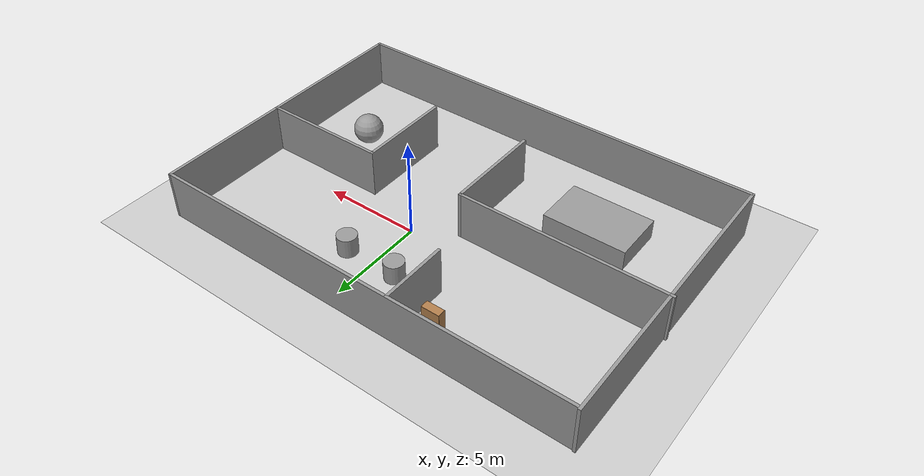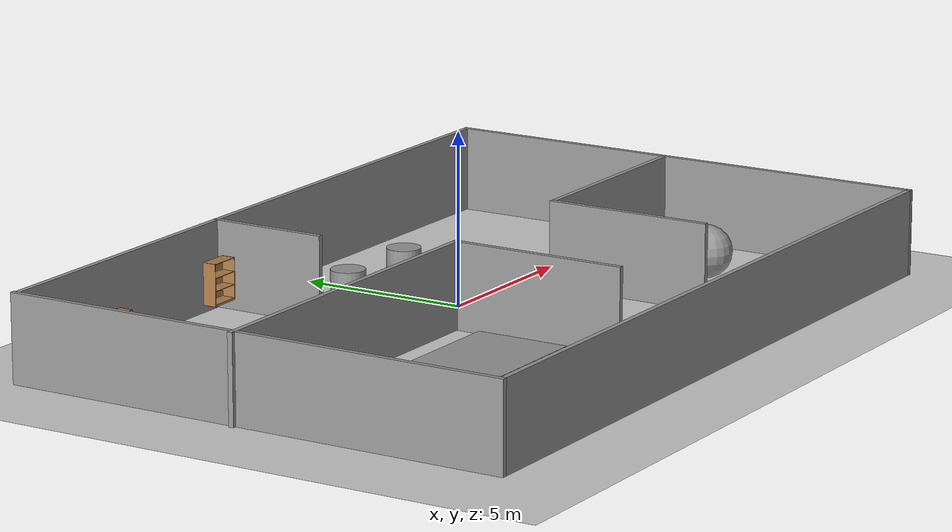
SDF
<sdf version="1.7">
 <world name="default">
  <light name="sun" type="directional">
   <pose>0 0 10 0 -0 0</pose>
   <diffuse>0.8 0.8 0.8 1</diffuse>
   <specular>0.2 0.2 0.2 1</specular>
   <attenuation>
    <range>1000</range>
    <constant>0.9</constant>
    <linear>0.01</linear>
    <quadratic>0.001</quadratic>
   </attenuation>
   <direction>-0.5 0.1 -0.9</direction>
   <spot><inner_angle>0</inner_angle><outer_angle>0</outer_angle><falloff>0</falloff></spot>
  </light>
  <model name="ground_plane">
   <static>1</static>
   <link name="link">
    <collision name="collision">
     <geometry><plane><normal>0 0 1</normal><size>100 100</size></plane></geometry>
     <surface><friction><ode><mu>100</mu><mu2>50</mu2></ode></friction></surface>
    </collision>
    <visual name="visual">
     <cast_shadows>0</cast_shadows>
     <geometry><plane><normal>0 0 1</normal><size>100 100</size></plane></geometry>
     <material>
      <script><uri>file://media/materials/scripts/gazebo.material</uri><name>Gazebo/Grey</name></script>
     </material>
    </visual>
   </link>
  </model>
  <gravity>0 0 -9.8</gravity>
  <magnetic_field>6e-06 2.3e-05 -4.2e-05</magnetic_field>
  <atmosphere type="adiabatic"/>
  <physics type="ode">
   <max_step_size>0.001</max_step_size>
   <real_time_factor>1</real_time_factor>
   <real_time_update_rate>1000</real_time_update_rate>
  </physics>
  <scene><ambient>0.4 0.4 0.4 1</ambient><background>0.7 0.7 0.7 1</background><shadows>1</shadows></scene>
  <audio><device>default</device></audio>
  <spherical_coordinates>
   <surface_model>EARTH_WGS84</surface_model>
   <latitude_deg>0</latitude_deg>
   <longitude_deg>0</longitude_deg>
   <elevation>0</elevation>
   <heading_deg>0</heading_deg>
  </spherical_coordinates>
  <model name="unit_cylinder">
   <pose>-1.32629 2.79554 0.499997 4e-06 3e-06 -0.00901</pose>
   <link name="link">
    <inertial>
     <mass>1</mass>
     <inertia><ixx>0.145833</ixx><ixy>0</ixy><ixz>0</ixz><iyy>0.145833</iyy><iyz>0</iyz><izz>0.125</izz></inertia>
    </inertial>
    <collision name="collision">
     <geometry><cylinder><radius>0.5</radius><length>1</length></cylinder></geometry>
    </collision>
    <visual name="visual">
     <geometry><cylinder><radius>0.5</radius><length>1</length></cylinder></geometry>
     <material>
      <script><name>Gazebo/Grey</name><uri>file://media/materials/scripts/gazebo.material</uri></script>
     </material>
    </visual>
   </link>
  </model>
  <model name="unit_sphere">
   <pose>6.37742 -4.31755 0.768866 0 -0 0</pose>
   <link name="link">
    <inertial>
     <mass>1</mass>
     <inertia><ixx>0.1</ixx><ixy>0</ixy><ixz>0</ixz><iyy>0.1</iyy><iyz>0</iyz><izz>0.1</izz></inertia>
    </inertial>
    <collision name="collision"><geometry><sphere><radius>0.768865</radius></sphere></geometry></collision>
    <visual name="visual">
     <geometry><sphere><radius>0.768865</radius></sphere></geometry>
     <material>
      <script><name>Gazebo/Grey</name><uri>file://media/materials/scripts/gazebo.material</uri></script>
     </material>
    </visual>
   </link>
  </model>
  <model name="unit_cylinder_0">
   <pose>1.4747 2.75806 0.499993 -3e-06 3e-06 1.1e-05</pose>
   <link name="link">
    <inertial>
     <mass>1</mass>
     <inertia><ixx>0.145833</ixx><ixy>0</ixy><ixz>0</ixz><iyy>0.145833</iyy><iyz>0</iyz><izz>0.125</izz></inertia>
    </inertial>
    <collision name="collision">
     <geometry><cylinder><radius>0.5</radius><length>1</length></cylinder></geometry>
    </collision>
    <visual name="visual">
     <geometry><cylinder><radius>0.5</radius><length>1</length></cylinder></geometry>
     <material>
      <script><name>Gazebo/Grey</name><uri>file://media/materials/scripts/gazebo.material</uri></script>
     </material>
    </visual>
   </link>
  </model>
  <model name="bookshelf">
   <static>1</static>
   <link name="link">
    <inertial><mass>1</mass></inertial>
    <collision name="back">
     <pose>0 0.005 0.6 0 -0 0</pose>
     <geometry><box><size>0.9 0.01 1.2</size></box></geometry>
    </collision>
    <visual name="visual1">
     <pose>0 0.005 0.6 0 -0 0</pose>
     <geometry><box><size>0.9 0.01 1.2</size></box></geometry>
     <material>
      <script><uri>file://media/materials/scripts/gazebo.material</uri><name>Gazebo/Wood</name></script>
     </material>
    </visual>
    <collision name="left_side">
     <pose>0.45 -0.195 0.6 0 -0 0</pose>
     <geometry><box><size>0.02 0.4 1.2</size></box></geometry>
    </collision>
    <visual name="visual2">
     <pose>0.45 -0.195 0.6 0 -0 0</pose>
     <geometry><box><size>0.02 0.4 1.2</size></box></geometry>
     <material>
      <script><uri>file://media/materials/scripts/gazebo.material</uri><name>Gazebo/Wood</name></script>
     </material>
    </visual>
    <collision name="right_side">
     <pose>-0.45 -0.195 0.6 0 -0 0</pose>
     <geometry><box><size>0.02 0.4 1.2</size></box></geometry>
    </collision>
    <visual name="visual3">
     <pose>-0.45 -0.195 0.6 0 -0 0</pose>
     <geometry><box><size>0.02 0.4 1.2</size></box></geometry>
     <material>
      <script><uri>file://media/materials/scripts/gazebo.material</uri><name>Gazebo/Wood</name></script>
     </material>
    </visual>
    <collision name="bottom">
     <pose>0 -0.195 0.03 0 -0 0</pose>
     <geometry><box><size>0.88 0.4 0.06</size></box></geometry>
    </collision>
    <visual name="visual4">
     <pose>0 -0.195 0.03 0 -0 0</pose>
     <geometry><box><size>0.88 0.4 0.06</size></box></geometry>
     <material>
      <script><uri>file://media/materials/scripts/gazebo.material</uri><name>Gazebo/Wood</name></script>
     </material>
    </visual>
    <collision name="top">
     <pose>0 -0.195 1.19 0 -0 0</pose>
     <geometry><box><size>0.88 0.4 0.02</size></box></geometry>
    </collision>
    <visual name="visual5">
     <pose>0 -0.195 1.19 0 -0 0</pose>
     <geometry><box><size>0.88 0.4 0.02</size></box></geometry>
     <material>
      <script><uri>file://media/materials/scripts/gazebo.material</uri><name>Gazebo/Wood</name></script>
     </material>
    </visual>
    <collision name="low_shelf">
     <pose>0 -0.195 0.43 0 -0 0</pose>
     <geometry><box><size>0.88 0.4 0.02</size></box></geometry>
    </collision>
    <visual name="visual6">
     <pose>0 -0.195 0.43 0 -0 0</pose>
     <geometry><box><size>0.88 0.4 0.02</size></box></geometry>
     <material>
      <script><uri>file://media/materials/scripts/gazebo.material</uri><name>Gazebo/Wood</name></script>
     </material>
    </visual>
    <collision name="high_shelf">
     <pose>0 -0.195 0.8 0 -0 0</pose>
     <geometry><box><size>0.88 0.4 0.02</size></box></geometry>
    </collision>
    <visual name="visual7">
     <pose>0 -0.195 0.8 0 -0 0</pose>
     <geometry><box><size>0.88 0.4 0.02</size></box></geometry>
     <material>
      <script><uri>file://media/materials/scripts/gazebo.material</uri><name>Gazebo/Wood</name></script>
     </material>
    </visual>
   </link>
   <pose>-4.95594 4.8047 0.619736 0 -0 0</pose>
  </model>
  <model name="bookshelf_0">
   <static>1</static>
   <link name="link">
    <inertial><mass>1</mass></inertial>
    <collision name="back">
     <pose>0 0.005 0.6 0 -0 0</pose>
     <geometry><box><size>0.9 0.01 1.2</size></box></geometry>
    </collision>
    <visual name="visual1">
     <pose>0 0.005 0.6 0 -0 0</pose>
     <geometry><box><size>0.9 0.01 1.2</size></box></geometry>
     <material>
      <script><uri>file://media/materials/scripts/gazebo.material</uri><name>Gazebo/Wood</name></script>
     </material>
    </visual>
    <collision name="left_side">
     <pose>0.45 -0.195 0.6 0 -0 0</pose>
     <geometry><box><size>0.02 0.4 1.2</size></box></geometry>
    </collision>
    <visual name="visual2">
     <pose>0.45 -0.195 0.6 0 -0 0</pose>
     <geometry><box><size>0.02 0.4 1.2</size></box></geometry>
     <material>
      <script><uri>file://media/materials/scripts/gazebo.material</uri><name>Gazebo/Wood</name></script>
     </material>
    </visual>
    <collision name="right_side">
     <pose>-0.45 -0.195 0.6 0 -0 0</pose>
     <geometry><box><size>0.02 0.4 1.2</size></box></geometry>
    </collision>
    <visual name="visual3">
     <pose>-0.45 -0.195 0.6 0 -0 0</pose>
     <geometry><box><size>0.02 0.4 1.2</size></box></geometry>
     <material>
      <script><uri>file://media/materials/scripts/gazebo.material</uri><name>Gazebo/Wood</name></script>
     </material>
    </visual>
    <collision name="bottom">
     <pose>0 -0.195 0.03 0 -0 0</pose>
     <geometry><box><size>0.88 0.4 0.06</size></box></geometry>
    </collision>
    <visual name="visual4">
     <pose>0 -0.195 0.03 0 -0 0</pose>
     <geometry><box><size>0.88 0.4 0.06</size></box></geometry>
     <material>
      <script><uri>file://media/materials/scripts/gazebo.material</uri><name>Gazebo/Wood</name></script>
     </material>
    </visual>
    <collision name="top">
     <pose>0 -0.195 1.19 0 -0 0</pose>
     <geometry><box><size>0.88 0.4 0.02</size></box></geometry>
    </collision>
    <visual name="visual5">
     <pose>0 -0.195 1.19 0 -0 0</pose>
     <geometry><box><size>0.88 0.4 0.02</size></box></geometry>
     <material>
      <script><uri>file://media/materials/scripts/gazebo.material</uri><name>Gazebo/Wood</name></script>
     </material>
    </visual>
    <collision name="low_shelf">
     <pose>0 -0.195 0.43 0 -0 0</pose>
     <geometry><box><size>0.88 0.4 0.02</size></box></geometry>
    </collision>
    <visual name="visual6">
     <pose>0 -0.195 0.43 0 -0 0</pose>
     <geometry><box><size>0.88 0.4 0.02</size></box></geometry>
     <material>
      <script><uri>file://media/materials/scripts/gazebo.material</uri><name>Gazebo/Wood</name></script>
     </material>
    </visual>
    <collision name="high_shelf">
     <pose>0 -0.195 0.8 0 -0 0</pose>
     <geometry><box><size>0.88 0.4 0.02</size></box></geometry>
    </collision>
    <visual name="visual7">
     <pose>0 -0.195 0.8 0 -0 0</pose>
     <geometry><box><size>0.88 0.4 0.02</size></box></geometry>
     <material>
      <script><uri>file://media/materials/scripts/gazebo.material</uri><name>Gazebo/Wood</name></script>
     </material>
    </visual>
   </link>
   <pose>-8.94225 5.3478 0 0 -0 0</pose>
  </model>
  <model name="bookshelf_4">
   <static>1</static>
   <link name="link">
    <inertial><mass>1</mass></inertial>
    <collision name="back">
     <pose>0 0.005 0.6 0 -0 0</pose>
     <geometry><box><size>0.9 0.01 1.2</size></box></geometry>
    </collision>
    <visual name="visual1">
     <pose>0 0.005 0.6 0 -0 0</pose>
     <geometry><box><size>0.9 0.01 1.2</size></box></geometry>
     <material>
      <script><uri>file://media/materials/scripts/gazebo.material</uri><name>Gazebo/Wood</name></script>
     </material>
    </visual>
    <collision name="left_side">
     <pose>0.45 -0.195 0.6 0 -0 0</pose>
     <geometry><box><size>0.02 0.4 1.2</size></box></geometry>
    </collision>
    <visual name="visual2">
     <pose>0.45 -0.195 0.6 0 -0 0</pose>
     <geometry><box><size>0.02 0.4 1.2</size></box></geometry>
     <material>
      <script><uri>file://media/materials/scripts/gazebo.material</uri><name>Gazebo/Wood</name></script>
     </material>
    </visual>
    <collision name="right_side">
     <pose>-0.45 -0.195 0.6 0 -0 0</pose>
     <geometry><box><size>0.02 0.4 1.2</size></box></geometry>
    </collision>
    <visual name="visual3">
     <pose>-0.45 -0.195 0.6 0 -0 0</pose>
     <geometry><box><size>0.02 0.4 1.2</size></box></geometry>
     <material>
      <script><uri>file://media/materials/scripts/gazebo.material</uri><name>Gazebo/Wood</name></script>
     </material>
    </visual>
    <collision name="bottom">
     <pose>0 -0.195 0.03 0 -0 0</pose>
     <geometry><box><size>0.88 0.4 0.06</size></box></geometry>
    </collision>
    <visual name="visual4">
     <pose>0 -0.195 0.03 0 -0 0</pose>
     <geometry><box><size>0.88 0.4 0.06</size></box></geometry>
     <material>
      <script><uri>file://media/materials/scripts/gazebo.material</uri><name>Gazebo/Wood</name></script>
     </material>
    </visual>
    <collision name="top">
     <pose>0 -0.195 1.19 0 -0 0</pose>
     <geometry><box><size>0.88 0.4 0.02</size></box></geometry>
    </collision>
    <visual name="visual5">
     <pose>0 -0.195 1.19 0 -0 0</pose>
     <geometry><box><size>0.88 0.4 0.02</size></box></geometry>
     <material>
      <script><uri>file://media/materials/scripts/gazebo.material</uri><name>Gazebo/Wood</name></script>
     </material>
    </visual>
    <collision name="low_shelf">
     <pose>0 -0.195 0.43 0 -0 0</pose>
     <geometry><box><size>0.88 0.4 0.02</size></box></geometry>
    </collision>
    <visual name="visual6">
     <pose>0 -0.195 0.43 0 -0 0</pose>
     <geometry><box><size>0.88 0.4 0.02</size></box></geometry>
     <material>
      <script><uri>file://media/materials/scripts/gazebo.material</uri><name>Gazebo/Wood</name></script>
     </material>
    </visual>
    <collision name="high_shelf">
     <pose>0 -0.195 0.8 0 -0 0</pose>
     <geometry><box><size>0.88 0.4 0.02</size></box></geometry>
    </collision>
    <visual name="visual7">
     <pose>0 -0.195 0.8 0 -0 0</pose>
     <geometry><box><size>0.88 0.4 0.02</size></box></geometry>
     <material>
      <script><uri>file://media/materials/scripts/gazebo.material</uri><name>Gazebo/Wood</name></script>
     </material>
    </visual>
   </link>
   <pose>4.38075 -1.46509 0 0 -0 0</pose>
  </model>
  <model name="unit_box">
   <pose>-7.01083 -5.05125 0.517375 7e-05 -0 2e-06</pose>
   <link name="link">
    <inertial>
     <mass>1</mass>
     <inertia>
      <ixx>0.166667</ixx>
      <ixy>0</ixy>
      <ixz>0</ixz>
      <iyy>0.166667</iyy>
      <iyz>0</iyz>
      <izz>0.166667</izz>
     </inertia>
    </inertial>
    <collision name="collision"><geometry><box><size>4.27765 2.70469 1.03494</size></box></geometry></collision>
    <visual name="visual">
     <geometry><box><size>4.27765 2.70469 1.03494</size></box></geometry>
     <material>
      <script><name>Gazebo/Grey</name><uri>file://media/materials/scripts/gazebo.material</uri></script>
     </material>
    </visual>
   </link>
  </model>
  <model name="room2">
   <pose>-1.47088 -1.65721 0 0 -0 0</pose>
   <link name="Wall_10">
    <collision name="Wall_10_Collision">
     <geometry><box><size>5.25 0.15 2.5</size></box></geometry>
     <pose>0 0 1.25 0 -0 0</pose>
    </collision>
    <visual name="Wall_10_Visual">
     <pose>0 0 1.25 0 -0 0</pose>
     <geometry><box><size>5.25 0.15 2.5</size></box></geometry>
     <material>
      <script><uri>file://media/materials/scripts/gazebo.material</uri><name>Gazebo/Grey</name></script>
      <ambient>1 1 1 1</ambient>
     </material>
     <meta><layer>0</layer></meta>
    </visual>
    <pose>-0.505851 -2.06642 0 0 -0 -1.5708</pose>
   </link>
   <link name="Wall_13">
    <collision name="Wall_13_Collision">
     <geometry><box><size>5 0.15 2.5</size></box></geometry>
     <pose>0 0 1.25 0 -0 0</pose>
    </collision>
    <visual name="Wall_13_Visual">
     <pose>0 0 1.25 0 -0 0</pose>
     <geometry><box><size>5 0.15 2.5</size></box></geometry>
     <material>
      <script><uri>file://media/materials/scripts/gazebo.material</uri><name>Gazebo/Grey</name></script>
      <ambient>1 1 1 1</ambient>
     </material>
     <meta><layer>0</layer></meta>
    </visual>
    <pose>4.70681 -1.8906 0 0 -0 1.5708</pose>
   </link>
   <link name="Wall_14">
    <collision name="Wall_14_Collision">
     <geometry><box><size>6.5 0.15 2.5</size></box></geometry>
     <pose>0 0 1.25 0 -0 0</pose>
    </collision>
    <visual name="Wall_14_Visual">
     <pose>0 0 1.25 0 -0 0</pose>
     <geometry><box><size>6.5 0.15 2.5</size></box></geometry>
     <material>
      <script><uri>file://media/materials/scripts/gazebo.material</uri><name>Gazebo/Grey</name></script>
      <ambient>1 1 1 1</ambient>
     </material>
     <meta><layer>0</layer></meta>
    </visual>
    <pose>7.88181 0.534404 0 0 -0 0</pose>
   </link>
   <link name="Wall_17">
    <collision name="Wall_17_Collision">
     <geometry><box><size>3.5 0.15 2.5</size></box></geometry>
     <pose>0 0 1.25 0 -0 0</pose>
    </collision>
    <visual name="Wall_17_Visual">
     <pose>0 0 1.25 0 -0 0</pose>
     <geometry><box><size>3.5 0.15 2.5</size></box></geometry>
     <material>
      <script><uri>file://media/materials/scripts/gazebo.material</uri><name>Gazebo/Grey</name></script>
      <ambient>1 1 1 1</ambient>
     </material>
     <meta><layer>0</layer></meta>
    </visual>
    <pose>-1.99972 5.66567 0 0 -0 1.5708</pose>
   </link>
   <link name="Wall_4">
    <collision name="Wall_4_Collision">
     <geometry><box><size>22 0.15 2.5</size></box></geometry>
     <pose>0 0 1.25 0 -0 0</pose>
    </collision>
    <visual name="Wall_4_Visual">
     <pose>0 0 1.25 0 -0 0</pose>
     <geometry><box><size>22 0.15 2.5</size></box></geometry>
     <material>
      <script><uri>file://media/materials/scripts/gazebo.material</uri><name>Gazebo/Grey</name></script>
      <ambient>1 1 1 1</ambient>
     </material>
     <meta><layer>0</layer></meta>
    </visual>
    <pose>0.057483 7.3747 0 0 -0 0</pose>
   </link>
   <link name="Wall_5">
    <collision name="Wall_5_Collision">
     <geometry><box><size>14.95 0.15 2.5</size></box></geometry>
     <pose>0 0 1.25 0 -0 0</pose>
    </collision>
    <visual name="Wall_5_Visual">
     <pose>0 0 1.25 0 -0 0</pose>
     <geometry><box><size>14.95 0.15 2.5</size></box></geometry>
     <material>
      <script><uri>file://media/materials/scripts/gazebo.material</uri><name>Gazebo/Grey</name></script>
      <ambient>1 1 1 1</ambient>
     </material>
     <meta><layer>0</layer></meta>
    </visual>
    <pose>11.0748 -0.025024 0 0 -0 -1.56664</pose>
   </link>
   <link name="Wall_6">
    <collision name="Wall_6_Collision">
     <geometry><box><size>22.25 0.15 2.5</size></box></geometry>
     <pose>0 0 1.25 0 -0 0</pose>
    </collision>
    <visual name="Wall_6_Visual">
     <pose>0 0 1.25 0 -0 0</pose>
     <geometry><box><size>22.25 0.15 2.5</size></box></geometry>
     <material>
      <script><uri>file://media/materials/scripts/gazebo.material</uri><name>Gazebo/Grey</name></script>
      <ambient>1 1 1 1</ambient>
     </material>
     <meta><layer>0</layer></meta>
    </visual>
    <pose>0.055539 -7.42475 0 0 -0 3.14159</pose>
   </link>
   <link name="Wall_7">
    <collision name="Wall_7_Collision">
     <geometry><box><size>15 0.15 2.5</size></box></geometry>
     <pose>0 0 1.25 0 -0 0</pose>
    </collision>
    <visual name="Wall_7_Visual">
     <pose>0 0 1.25 0 -0 0</pose>
     <geometry><box><size>15 0.15 2.5</size></box></geometry>
     <material>
      <script><uri>file://media/materials/scripts/gazebo.material</uri><name>Gazebo/Grey</name></script>
      <ambient>1 1 1 1</ambient>
     </material>
     <meta><layer>0</layer></meta>
    </visual>
    <pose>-10.9945 0.000251 0 0 -0 1.5708</pose>
   </link>
   <link name="Wall_9">
    <collision name="Wall_9_Collision">
     <geometry><box><size>10.75 0.15 2.5</size></box></geometry>
     <pose>0 0 1.25 0 -0 0</pose>
    </collision>
    <visual name="Wall_9_Visual">
     <pose>0 0 1.25 0 -0 0</pose>
     <geometry><box><size>10.75 0.15 2.5</size></box></geometry>
     <material>
      <script><uri>file://media/materials/scripts/gazebo.material</uri><name>Gazebo/Grey</name></script>
      <ambient>1 1 1 1</ambient>
     </material>
     <meta><layer>0</layer></meta>
    </visual>
    <pose>-5.80585 0.483578 0 0 -0 0</pose>
   </link>
   <static>1</static>
  </model>
 </world>
</sdf>
